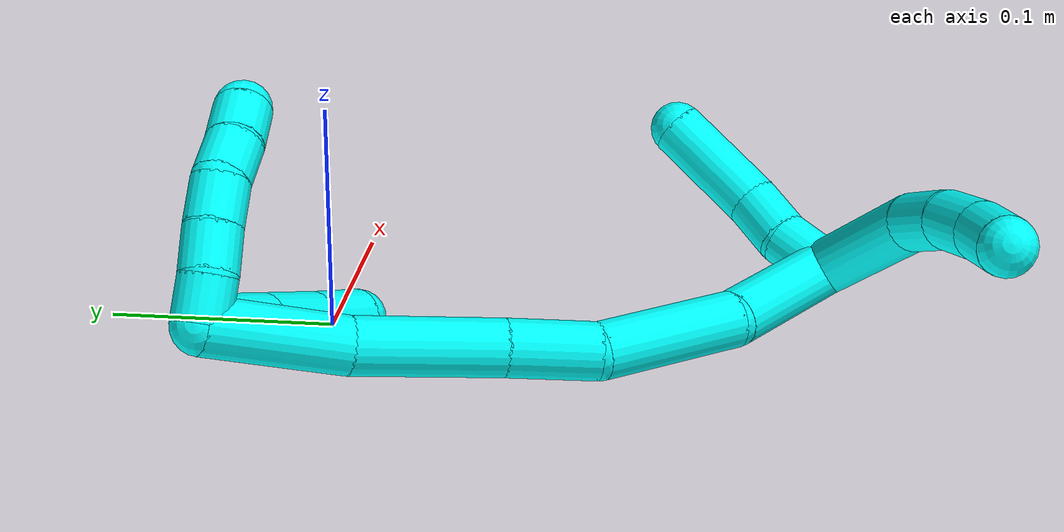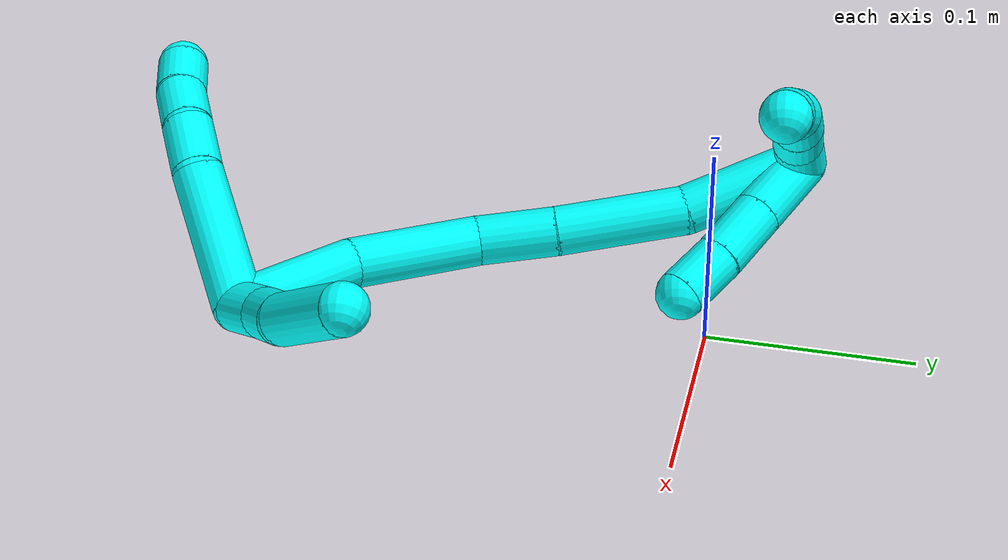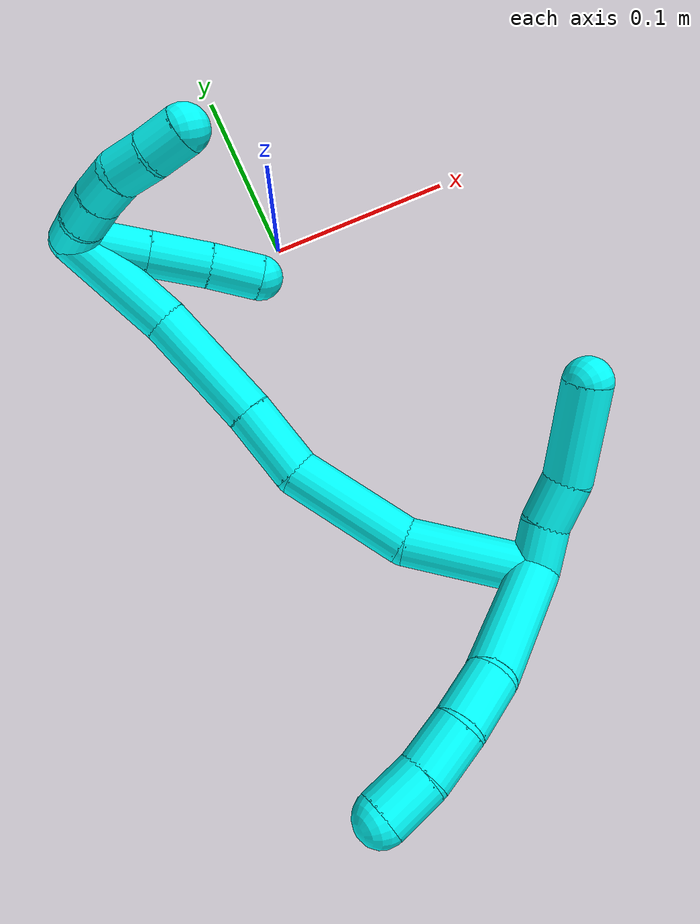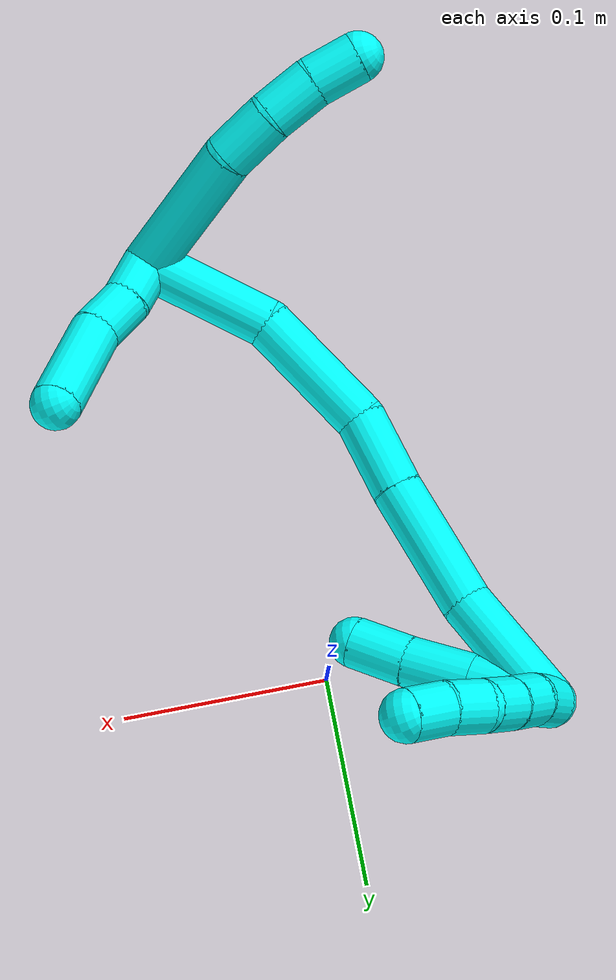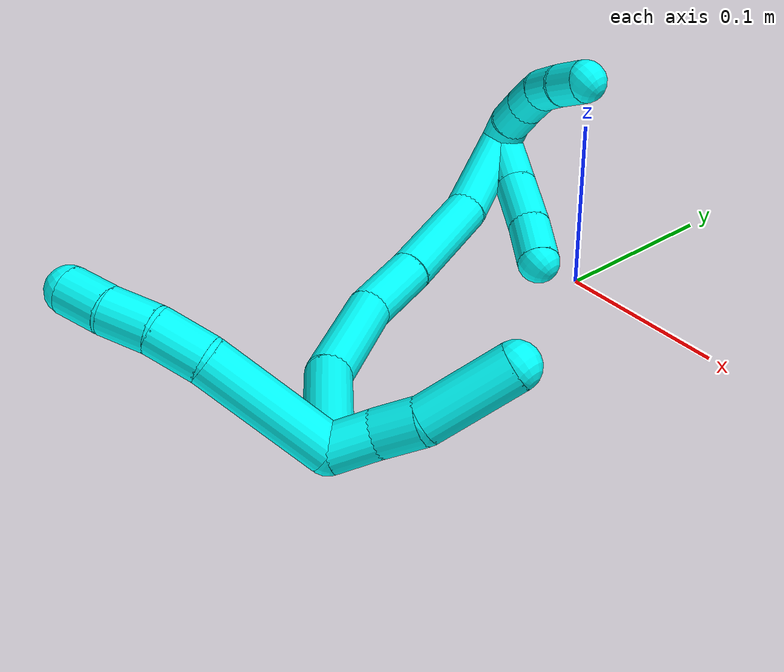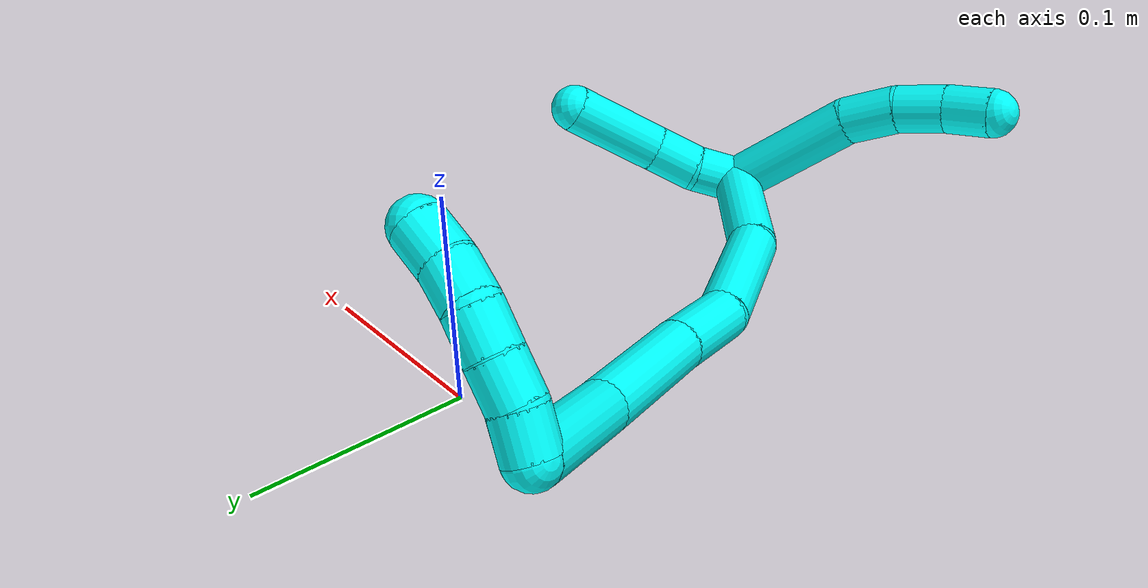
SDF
<sdf version="1.7">
 <world name="default">
  <model name="3">
   <static>0</static>
   <link name="3">
    <collision name="collision-cylinder-e_1_2_8">
     <pose>0.012544 -0.010998 0.031735 0.333614 0.357433 0.060812</pose>
     <geometry><cylinder><radius>0.0125</radius><length>0.071705</length></cylinder></geometry>
     <surface>
      <friction><ode><mu>1.16</mu><mu2>1.16</mu2><slip1>0</slip1><slip2>0</slip2></ode></friction>
      <contact><ode><kp>1e+06</kp><kd>1</kd><max_vel>0</max_vel><min_depth>0.001</min_depth></ode></contact>
     </surface>
    </collision>
    <visual name="visual-cylinder-e_1_2_8">
     <pose>0.012544 -0.010998 0.031735 0.333614 0.357433 0.060812</pose>
     <geometry><cylinder><radius>0.0125</radius><length>0.071705</length></cylinder></geometry>
     <material><ambient>0.003922 1 0.996078 1</ambient></material>
    </visual>
    <collision name="collision-cylinder-e_2_8_9">
     <pose>0.026504 -0.027062 0.076548 0.36952 0.100676 0.018831</pose>
     <geometry><cylinder><radius>0.0125</radius><length>0.028193</length></cylinder></geometry>
     <surface>
      <friction><ode><mu>1.16</mu><mu2>1.16</mu2><slip1>0</slip1><slip2>0</slip2></ode></friction>
      <contact><ode><kp>1e+06</kp><kd>1</kd><max_vel>0</max_vel><min_depth>0.001</min_depth></ode></contact>
     </surface>
    </collision>
    <visual name="visual-cylinder-e_2_8_9">
     <pose>0.026504 -0.027062 0.076548 0.36952 0.100676 0.018831</pose>
     <geometry><cylinder><radius>0.0125</radius><length>0.028193</length></cylinder></geometry>
     <material><ambient>0.003922 1 0.996078 1</ambient></material>
    </visual>
    <collision name="collision-cylinder-e_3_9_10">
     <pose>0.02657 -0.037645 0.101211 0.444504 -0.104894 -0.023725</pose>
     <geometry><cylinder><radius>0.0125</radius><length>0.025806</length></cylinder></geometry>
     <surface>
      <friction><ode><mu>1.16</mu><mu2>1.16</mu2><slip1>0</slip1><slip2>0</slip2></ode></friction>
      <contact><ode><kp>1e+06</kp><kd>1</kd><max_vel>0</max_vel><min_depth>0.001</min_depth></ode></contact>
     </surface>
    </collision>
    <visual name="visual-cylinder-e_3_9_10">
     <pose>0.02657 -0.037645 0.101211 0.444504 -0.104894 -0.023725</pose>
     <geometry><cylinder><radius>0.0125</radius><length>0.025806</length></cylinder></geometry>
     <material><ambient>0.003922 1 0.996078 1</ambient></material>
    </visual>
    <collision name="collision-cylinder-e_4_10_6">
     <pose>0.022619 -0.04688 0.124066 0.318555 -0.215662 -0.034775</pose>
     <geometry><cylinder><radius>0.0125</radius><length>0.024296</length></cylinder></geometry>
     <surface>
      <friction><ode><mu>1.16</mu><mu2>1.16</mu2><slip1>0</slip1><slip2>0</slip2></ode></friction>
      <contact><ode><kp>1e+06</kp><kd>1</kd><max_vel>0</max_vel><min_depth>0.001</min_depth></ode></contact>
     </surface>
    </collision>
    <visual name="visual-cylinder-e_4_10_6">
     <pose>0.022619 -0.04688 0.124066 0.318555 -0.215662 -0.034775</pose>
     <geometry><cylinder><radius>0.0125</radius><length>0.024296</length></cylinder></geometry>
     <material><ambient>0.003922 1 0.996078 1</ambient></material>
    </visual>
    <collision name="collision-cylinder-e_1_2_11">
     <pose>0.003444 0.010665 -0.005106 -2.01736 0.283429 -0.445477</pose>
     <geometry><cylinder><radius>0.0125</radius><length>0.024631</length></cylinder></geometry>
     <surface>
      <friction><ode><mu>1.16</mu><mu2>1.16</mu2><slip1>0</slip1><slip2>0</slip2></ode></friction>
      <contact><ode><kp>1e+06</kp><kd>1</kd><max_vel>0</max_vel><min_depth>0.001</min_depth></ode></contact>
     </surface>
    </collision>
    <visual name="visual-cylinder-e_1_2_11">
     <pose>0.003444 0.010665 -0.005106 -2.01736 0.283429 -0.445477</pose>
     <geometry><cylinder><radius>0.0125</radius><length>0.024631</length></cylinder></geometry>
     <material><ambient>0.003922 1 0.996078 1</ambient></material>
    </visual>
    <collision name="collision-cylinder-e_2_11_12">
     <pose>0.012773 0.030521 -0.016144 -2.14385 0.493579 -0.866207</pose>
     <geometry><cylinder><radius>0.0125</radius><length>0.024844</length></cylinder></geometry>
     <surface>
      <friction><ode><mu>1.16</mu><mu2>1.16</mu2><slip1>0</slip1><slip2>0</slip2></ode></friction>
      <contact><ode><kp>1e+06</kp><kd>1</kd><max_vel>0</max_vel><min_depth>0.001</min_depth></ode></contact>
     </surface>
    </collision>
    <visual name="visual-cylinder-e_2_11_12">
     <pose>0.012773 0.030521 -0.016144 -2.14385 0.493579 -0.866207</pose>
     <geometry><cylinder><radius>0.0125</radius><length>0.024844</length></cylinder></geometry>
     <material><ambient>0.003922 1 0.996078 1</ambient></material>
    </visual>
    <collision name="collision-cylinder-e_3_12_5">
     <pose>0.029043 0.062015 -0.02782 -1.8229 0.423603 -0.541251</pose>
     <geometry><cylinder><radius>0.0125</radius><length>0.050525</length></cylinder></geometry>
     <surface>
      <friction><ode><mu>1.16</mu><mu2>1.16</mu2><slip1>0</slip1><slip2>0</slip2></ode></friction>
      <contact><ode><kp>1e+06</kp><kd>1</kd><max_vel>0</max_vel><min_depth>0.001</min_depth></ode></contact>
     </surface>
    </collision>
    <visual name="visual-cylinder-e_3_12_5">
     <pose>0.029043 0.062015 -0.02782 -1.8229 0.423603 -0.541251</pose>
     <geometry><cylinder><radius>0.0125</radius><length>0.050525</length></cylinder></geometry>
     <material><ambient>0.003922 1 0.996078 1</ambient></material>
    </visual>
    <collision name="collision-cylinder-e_1_2_13">
     <pose>-0.019528 0.016131 0.021058 -0.653678 -0.634597 0.221736</pose>
     <geometry><cylinder><radius>0.0125</radius><length>0.065879</length></cylinder></geometry>
     <surface>
      <friction><ode><mu>1.16</mu><mu2>1.16</mu2><slip1>0</slip1><slip2>0</slip2></ode></friction>
      <contact><ode><kp>1e+06</kp><kd>1</kd><max_vel>0</max_vel><min_depth>0.001</min_depth></ode></contact>
     </surface>
    </collision>
    <visual name="visual-cylinder-e_1_2_13">
     <pose>-0.019528 0.016131 0.021058 -0.653678 -0.634597 0.221736</pose>
     <geometry><cylinder><radius>0.0125</radius><length>0.065879</length></cylinder></geometry>
     <material><ambient>0.003922 1 0.996078 1</ambient></material>
    </visual>
    <collision name="collision-cylinder-e_2_13_14">
     <pose>-0.056434 0.056635 0.055655 -1.06375 -0.557351 0.3336</pose>
     <geometry><cylinder><radius>0.0125</radius><length>0.065707</length></cylinder></geometry>
     <surface>
      <friction><ode><mu>1.16</mu><mu2>1.16</mu2><slip1>0</slip1><slip2>0</slip2></ode></friction>
      <contact><ode><kp>1e+06</kp><kd>1</kd><max_vel>0</max_vel><min_depth>0.001</min_depth></ode></contact>
     </surface>
    </collision>
    <visual name="visual-cylinder-e_2_13_14">
     <pose>-0.056434 0.056635 0.055655 -1.06375 -0.557351 0.3336</pose>
     <geometry><cylinder><radius>0.0125</radius><length>0.065707</length></cylinder></geometry>
     <material><ambient>0.003922 1 0.996078 1</ambient></material>
    </visual>
    <collision name="collision-cylinder-e_3_14_15">
     <pose>-0.080351 0.099413 0.07336 -1.34821 -0.333626 0.267448</pose>
     <geometry><cylinder><radius>0.0125</radius><length>0.039942</length></cylinder></geometry>
     <surface>
      <friction><ode><mu>1.16</mu><mu2>1.16</mu2><slip1>0</slip1><slip2>0</slip2></ode></friction>
      <contact><ode><kp>1e+06</kp><kd>1</kd><max_vel>0</max_vel><min_depth>0.001</min_depth></ode></contact>
     </surface>
    </collision>
    <visual name="visual-cylinder-e_3_14_15">
     <pose>-0.080351 0.099413 0.07336 -1.34821 -0.333626 0.267448</pose>
     <geometry><cylinder><radius>0.0125</radius><length>0.039942</length></cylinder></geometry>
     <material><ambient>0.003922 1 0.996078 1</ambient></material>
    </visual>
    <collision name="collision-cylinder-e_4_15_16">
     <pose>-0.098182 0.147205 0.086371 -1.27843 -0.352537 0.263267</pose>
     <geometry><cylinder><radius>0.0125</radius><length>0.065403</length></cylinder></geometry>
     <surface>
      <friction><ode><mu>1.16</mu><mu2>1.16</mu2><slip1>0</slip1><slip2>0</slip2></ode></friction>
      <contact><ode><kp>1e+06</kp><kd>1</kd><max_vel>0</max_vel><min_depth>0.001</min_depth></ode></contact>
     </surface>
    </collision>
    <visual name="visual-cylinder-e_4_15_16">
     <pose>-0.098182 0.147205 0.086371 -1.27843 -0.352537 0.263267</pose>
     <geometry><cylinder><radius>0.0125</radius><length>0.065403</length></cylinder></geometry>
     <material><ambient>0.003922 1 0.996078 1</ambient></material>
    </visual>
    <collision name="collision-cylinder-e_5_16_1">
     <pose>-0.116283 0.203976 0.109296 -1.09587 -0.217657 0.133159</pose>
     <geometry><cylinder><radius>0.0125</radius><length>0.063069</length></cylinder></geometry>
     <surface>
      <friction><ode><mu>1.16</mu><mu2>1.16</mu2><slip1>0</slip1><slip2>0</slip2></ode></friction>
      <contact><ode><kp>1e+06</kp><kd>1</kd><max_vel>0</max_vel><min_depth>0.001</min_depth></ode></contact>
     </surface>
    </collision>
    <visual name="visual-cylinder-e_5_16_1">
     <pose>-0.116283 0.203976 0.109296 -1.09587 -0.217657 0.133159</pose>
     <geometry><cylinder><radius>0.0125</radius><length>0.063069</length></cylinder></geometry>
     <material><ambient>0.003922 1 0.996078 1</ambient></material>
    </visual>
    <collision name="collision-cylinder-e_1_1_17">
     <pose>-0.113377 0.233674 0.122889 -1.7782 1.332 -1.5386</pose>
     <geometry><cylinder><radius>0.0125</radius><length>0.02</length></cylinder></geometry>
     <surface>
      <friction><ode><mu>1.16</mu><mu2>1.16</mu2><slip1>0</slip1><slip2>0</slip2></ode></friction>
      <contact><ode><kp>1e+06</kp><kd>1</kd><max_vel>0</max_vel><min_depth>0.001</min_depth></ode></contact>
     </surface>
    </collision>
    <visual name="visual-cylinder-e_1_1_17">
     <pose>-0.113377 0.233674 0.122889 -1.7782 1.332 -1.5386</pose>
     <geometry><cylinder><radius>0.0125</radius><length>0.02</length></cylinder></geometry>
     <material><ambient>0.003922 1 0.996078 1</ambient></material>
    </visual>
    <collision name="collision-cylinder-e_2_17_18">
     <pose>-0.094412 0.239114 0.120234 -2.17726 1.18059 -1.81528</pose>
     <geometry><cylinder><radius>0.0125</radius><length>0.02</length></cylinder></geometry>
     <surface>
      <friction><ode><mu>1.16</mu><mu2>1.16</mu2><slip1>0</slip1><slip2>0</slip2></ode></friction>
      <contact><ode><kp>1e+06</kp><kd>1</kd><max_vel>0</max_vel><min_depth>0.001</min_depth></ode></contact>
     </surface>
    </collision>
    <visual name="visual-cylinder-e_2_17_18">
     <pose>-0.094412 0.239114 0.120234 -2.17726 1.18059 -1.81528</pose>
     <geometry><cylinder><radius>0.0125</radius><length>0.02</length></cylinder></geometry>
     <material><ambient>0.003922 1 0.996078 1</ambient></material>
    </visual>
    <collision name="collision-cylinder-e_3_18_19">
     <pose>-0.075908 0.244815 0.11529 -2.39353 1.1825 -2.0835</pose>
     <geometry><cylinder><radius>0.0125</radius><length>0.02</length></cylinder></geometry>
     <surface>
      <friction><ode><mu>1.16</mu><mu2>1.16</mu2><slip1>0</slip1><slip2>0</slip2></ode></friction>
      <contact><ode><kp>1e+06</kp><kd>1</kd><max_vel>0</max_vel><min_depth>0.001</min_depth></ode></contact>
     </surface>
    </collision>
    <visual name="visual-cylinder-e_3_18_19">
     <pose>-0.075908 0.244815 0.11529 -2.39353 1.1825 -2.0835</pose>
     <geometry><cylinder><radius>0.0125</radius><length>0.02</length></cylinder></geometry>
     <material><ambient>0.003922 1 0.996078 1</ambient></material>
    </visual>
    <collision name="collision-cylinder-e_4_19_20">
     <pose>-0.058418 0.248706 0.106997 -2.90755 0.96759 -2.70139</pose>
     <geometry><cylinder><radius>0.0125</radius><length>0.02</length></cylinder></geometry>
     <surface>
      <friction><ode><mu>1.16</mu><mu2>1.16</mu2><slip1>0</slip1><slip2>0</slip2></ode></friction>
      <contact><ode><kp>1e+06</kp><kd>1</kd><max_vel>0</max_vel><min_depth>0.001</min_depth></ode></contact>
     </surface>
    </collision>
    <visual name="visual-cylinder-e_4_19_20">
     <pose>-0.058418 0.248706 0.106997 -2.90755 0.96759 -2.70139</pose>
     <geometry><cylinder><radius>0.0125</radius><length>0.02</length></cylinder></geometry>
     <material><ambient>0.003922 1 0.996078 1</ambient></material>
    </visual>
    <collision name="collision-cylinder-e_5_20_4">
     <pose>-0.042687 0.252249 0.095246 -2.79834 0.847425 -2.4078</pose>
     <geometry><cylinder><radius>0.0125</radius><length>0.02</length></cylinder></geometry>
     <surface>
      <friction><ode><mu>1.16</mu><mu2>1.16</mu2><slip1>0</slip1><slip2>0</slip2></ode></friction>
      <contact><ode><kp>1e+06</kp><kd>1</kd><max_vel>0</max_vel><min_depth>0.001</min_depth></ode></contact>
     </surface>
    </collision>
    <visual name="visual-cylinder-e_5_20_4">
     <pose>-0.042687 0.252249 0.095246 -2.79834 0.847425 -2.4078</pose>
     <geometry><cylinder><radius>0.0125</radius><length>0.02</length></cylinder></geometry>
     <material><ambient>0.003922 1 0.996078 1</ambient></material>
    </visual>
    <collision name="collision-cylinder-e_1_1_21">
     <pose>-0.118433 0.222398 0.1069 2.64341 0.243553 0.896849</pose>
     <geometry><cylinder><radius>0.0125</radius><length>0.038651</length></cylinder></geometry>
     <surface>
      <friction><ode><mu>1.16</mu><mu2>1.16</mu2><slip1>0</slip1><slip2>0</slip2></ode></friction>
      <contact><ode><kp>1e+06</kp><kd>1</kd><max_vel>0</max_vel><min_depth>0.001</min_depth></ode></contact>
     </surface>
    </collision>
    <visual name="visual-cylinder-e_1_1_21">
     <pose>-0.118433 0.222398 0.1069 2.64341 0.243553 0.896849</pose>
     <geometry><cylinder><radius>0.0125</radius><length>0.038651</length></cylinder></geometry>
     <material><ambient>0.003922 1 0.996078 1</ambient></material>
    </visual>
    <collision name="collision-cylinder-e_2_21_22">
     <pose>-0.109786 0.205795 0.076361 2.64393 0.244094 0.899454</pose>
     <geometry><cylinder><radius>0.0125</radius><length>0.032989</length></cylinder></geometry>
     <surface>
      <friction><ode><mu>1.16</mu><mu2>1.16</mu2><slip1>0</slip1><slip2>0</slip2></ode></friction>
      <contact><ode><kp>1e+06</kp><kd>1</kd><max_vel>0</max_vel><min_depth>0.001</min_depth></ode></contact>
     </surface>
    </collision>
    <visual name="visual-cylinder-e_2_21_22">
     <pose>-0.109786 0.205795 0.076361 2.64393 0.244094 0.899454</pose>
     <geometry><cylinder><radius>0.0125</radius><length>0.032989</length></cylinder></geometry>
     <material><ambient>0.003922 1 0.996078 1</ambient></material>
    </visual>
    <collision name="collision-cylinder-e_3_22_3">
     <pose>-0.101807 0.190892 0.05079 2.57857 0.285425 0.922272</pose>
     <geometry><cylinder><radius>0.0125</radius><length>0.02836</length></cylinder></geometry>
     <surface>
      <friction><ode><mu>1.16</mu><mu2>1.16</mu2><slip1>0</slip1><slip2>0</slip2></ode></friction>
      <contact><ode><kp>1e+06</kp><kd>1</kd><max_vel>0</max_vel><min_depth>0.001</min_depth></ode></contact>
     </surface>
    </collision>
    <visual name="visual-cylinder-e_3_22_3">
     <pose>-0.101807 0.190892 0.05079 2.57857 0.285425 0.922272</pose>
     <geometry><cylinder><radius>0.0125</radius><length>0.02836</length></cylinder></geometry>
     <material><ambient>0.003922 1 0.996078 1</ambient></material>
    </visual>
    <collision name="collision-sphere-3">
     <pose>-0.097814 0.18363 0.039284 0 -0 0</pose>
     <geometry><sphere><radius>0.0125</radius></sphere></geometry>
     <surface>
      <friction><ode><mu>1.16</mu><mu2>1.16</mu2><slip1>0</slip1><slip2>0</slip2></ode></friction>
      <contact><ode><kp>1e+06</kp><kd>1</kd><max_vel>0</max_vel><min_depth>0.001</min_depth></ode></contact>
     </surface>
    </collision>
    <visual name="visual-sphere-3">
     <pose>-0.097814 0.18363 0.039284 0 -0 0</pose>
     <geometry><sphere><radius>0.0125</radius></sphere></geometry>
     <material><ambient>0.003922 1 0.996078 1</ambient></material>
    </visual>
    <collision name="collision-sphere-22">
     <pose>-0.1058 0.198155 0.062296 0 -0 0</pose>
     <geometry><sphere><radius>0.0125</radius></sphere></geometry>
     <surface>
      <friction><ode><mu>1.16</mu><mu2>1.16</mu2><slip1>0</slip1><slip2>0</slip2></ode></friction>
      <contact><ode><kp>1e+06</kp><kd>1</kd><max_vel>0</max_vel><min_depth>0.001</min_depth></ode></contact>
     </surface>
    </collision>
    <visual name="visual-sphere-22">
     <pose>-0.1058 0.198155 0.062296 0 -0 0</pose>
     <geometry><sphere><radius>0.0125</radius></sphere></geometry>
     <material><ambient>0.003922 1 0.996078 1</ambient></material>
    </visual>
    <collision name="collision-sphere-21">
     <pose>-0.113772 0.213436 0.090425 0 -0 0</pose>
     <geometry><sphere><radius>0.0125</radius></sphere></geometry>
     <surface>
      <friction><ode><mu>1.16</mu><mu2>1.16</mu2><slip1>0</slip1><slip2>0</slip2></ode></friction>
      <contact><ode><kp>1e+06</kp><kd>1</kd><max_vel>0</max_vel><min_depth>0.001</min_depth></ode></contact>
     </surface>
    </collision>
    <visual name="visual-sphere-21">
     <pose>-0.113772 0.213436 0.090425 0 -0 0</pose>
     <geometry><sphere><radius>0.0125</radius></sphere></geometry>
     <material><ambient>0.003922 1 0.996078 1</ambient></material>
    </visual>
    <collision name="collision-sphere-4">
     <pose>-0.035191 0.254477 0.089013 0 -0 0</pose>
     <geometry><sphere><radius>0.0125</radius></sphere></geometry>
     <surface>
      <friction><ode><mu>1.16</mu><mu2>1.16</mu2><slip1>0</slip1><slip2>0</slip2></ode></friction>
      <contact><ode><kp>1e+06</kp><kd>1</kd><max_vel>0</max_vel><min_depth>0.001</min_depth></ode></contact>
     </surface>
    </collision>
    <visual name="visual-sphere-4">
     <pose>-0.035191 0.254477 0.089013 0 -0 0</pose>
     <geometry><sphere><radius>0.0125</radius></sphere></geometry>
     <material><ambient>0.003922 1 0.996078 1</ambient></material>
    </visual>
    <collision name="collision-sphere-20">
     <pose>-0.050182 0.250022 0.101479 0 -0 0</pose>
     <geometry><sphere><radius>0.0125</radius></sphere></geometry>
     <surface>
      <friction><ode><mu>1.16</mu><mu2>1.16</mu2><slip1>0</slip1><slip2>0</slip2></ode></friction>
      <contact><ode><kp>1e+06</kp><kd>1</kd><max_vel>0</max_vel><min_depth>0.001</min_depth></ode></contact>
     </surface>
    </collision>
    <visual name="visual-sphere-20">
     <pose>-0.050182 0.250022 0.101479 0 -0 0</pose>
     <geometry><sphere><radius>0.0125</radius></sphere></geometry>
     <material><ambient>0.003922 1 0.996078 1</ambient></material>
    </visual>
    <collision name="collision-sphere-11">
     <pose>0.006888 0.021329 -0.010213 0 -0 0</pose>
     <geometry><sphere><radius>0.0125</radius></sphere></geometry>
     <surface>
      <friction><ode><mu>1.16</mu><mu2>1.16</mu2><slip1>0</slip1><slip2>0</slip2></ode></friction>
      <contact><ode><kp>1e+06</kp><kd>1</kd><max_vel>0</max_vel><min_depth>0.001</min_depth></ode></contact>
     </surface>
    </collision>
    <visual name="visual-sphere-11">
     <pose>0.006888 0.021329 -0.010213 0 -0 0</pose>
     <geometry><sphere><radius>0.0125</radius></sphere></geometry>
     <material><ambient>0.003922 1 0.996078 1</ambient></material>
    </visual>
    <collision name="collision-sphere-6">
     <pose>0.02002 -0.050596 0.135336 0 -0 0</pose>
     <geometry><sphere><radius>0.0125</radius></sphere></geometry>
     <surface>
      <friction><ode><mu>1.16</mu><mu2>1.16</mu2><slip1>0</slip1><slip2>0</slip2></ode></friction>
      <contact><ode><kp>1e+06</kp><kd>1</kd><max_vel>0</max_vel><min_depth>0.001</min_depth></ode></contact>
     </surface>
    </collision>
    <visual name="visual-sphere-6">
     <pose>0.02002 -0.050596 0.135336 0 -0 0</pose>
     <geometry><sphere><radius>0.0125</radius></sphere></geometry>
     <material><ambient>0.003922 1 0.996078 1</ambient></material>
    </visual>
    <collision name="collision-sphere-10">
     <pose>0.025219 -0.043163 0.112796 0 -0 0</pose>
     <geometry><sphere><radius>0.0125</radius></sphere></geometry>
     <surface>
      <friction><ode><mu>1.16</mu><mu2>1.16</mu2><slip1>0</slip1><slip2>0</slip2></ode></friction>
      <contact><ode><kp>1e+06</kp><kd>1</kd><max_vel>0</max_vel><min_depth>0.001</min_depth></ode></contact>
     </surface>
    </collision>
    <visual name="visual-sphere-10">
     <pose>0.025219 -0.043163 0.112796 0 -0 0</pose>
     <geometry><sphere><radius>0.0125</radius></sphere></geometry>
     <material><ambient>0.003922 1 0.996078 1</ambient></material>
    </visual>
    <collision name="collision-sphere-9">
     <pose>0.027921 -0.032127 0.089626 0 -0 0</pose>
     <geometry><sphere><radius>0.0125</radius></sphere></geometry>
     <surface>
      <friction><ode><mu>1.16</mu><mu2>1.16</mu2><slip1>0</slip1><slip2>0</slip2></ode></friction>
      <contact><ode><kp>1e+06</kp><kd>1</kd><max_vel>0</max_vel><min_depth>0.001</min_depth></ode></contact>
     </surface>
    </collision>
    <visual name="visual-sphere-9">
     <pose>0.027921 -0.032127 0.089626 0 -0 0</pose>
     <geometry><sphere><radius>0.0125</radius></sphere></geometry>
     <material><ambient>0.003922 1 0.996078 1</ambient></material>
    </visual>
    <collision name="collision-sphere-2">
     <geometry><sphere><radius>0.0125</radius></sphere></geometry>
     <surface>
      <friction><ode><mu>1.16</mu><mu2>1.16</mu2><slip1>0</slip1><slip2>0</slip2></ode></friction>
      <contact><ode><kp>1e+06</kp><kd>1</kd><max_vel>0</max_vel><min_depth>0.001</min_depth></ode></contact>
     </surface>
    </collision>
    <visual name="visual-sphere-2">
     <geometry><sphere><radius>0.0125</radius></sphere></geometry>
     <material><ambient>0.003922 1 0.996078 1</ambient></material>
    </visual>
    <collision name="collision-sphere-19">
     <pose>-0.066653 0.24739 0.112515 0 -0 0</pose>
     <geometry><sphere><radius>0.0125</radius></sphere></geometry>
     <surface>
      <friction><ode><mu>1.16</mu><mu2>1.16</mu2><slip1>0</slip1><slip2>0</slip2></ode></friction>
      <contact><ode><kp>1e+06</kp><kd>1</kd><max_vel>0</max_vel><min_depth>0.001</min_depth></ode></contact>
     </surface>
    </collision>
    <visual name="visual-sphere-19">
     <pose>-0.066653 0.24739 0.112515 0 -0 0</pose>
     <geometry><sphere><radius>0.0125</radius></sphere></geometry>
     <material><ambient>0.003922 1 0.996078 1</ambient></material>
    </visual>
    <collision name="collision-sphere-8">
     <pose>0.025087 -0.021996 0.063469 0 -0 0</pose>
     <geometry><sphere><radius>0.0125</radius></sphere></geometry>
     <surface>
      <friction><ode><mu>1.16</mu><mu2>1.16</mu2><slip1>0</slip1><slip2>0</slip2></ode></friction>
      <contact><ode><kp>1e+06</kp><kd>1</kd><max_vel>0</max_vel><min_depth>0.001</min_depth></ode></contact>
     </surface>
    </collision>
    <visual name="visual-sphere-8">
     <pose>0.025087 -0.021996 0.063469 0 -0 0</pose>
     <geometry><sphere><radius>0.0125</radius></sphere></geometry>
     <material><ambient>0.003922 1 0.996078 1</ambient></material>
    </visual>
    <collision name="collision-sphere-12">
     <pose>0.018659 0.039713 -0.022076 0 -0 0</pose>
     <geometry><sphere><radius>0.0125</radius></sphere></geometry>
     <surface>
      <friction><ode><mu>1.16</mu><mu2>1.16</mu2><slip1>0</slip1><slip2>0</slip2></ode></friction>
      <contact><ode><kp>1e+06</kp><kd>1</kd><max_vel>0</max_vel><min_depth>0.001</min_depth></ode></contact>
     </surface>
    </collision>
    <visual name="visual-sphere-12">
     <pose>0.018659 0.039713 -0.022076 0 -0 0</pose>
     <geometry><sphere><radius>0.0125</radius></sphere></geometry>
     <material><ambient>0.003922 1 0.996078 1</ambient></material>
    </visual>
    <collision name="collision-sphere-5">
     <pose>0.039427 0.084316 -0.033564 0 -0 0</pose>
     <geometry><sphere><radius>0.0125</radius></sphere></geometry>
     <surface>
      <friction><ode><mu>1.16</mu><mu2>1.16</mu2><slip1>0</slip1><slip2>0</slip2></ode></friction>
      <contact><ode><kp>1e+06</kp><kd>1</kd><max_vel>0</max_vel><min_depth>0.001</min_depth></ode></contact>
     </surface>
    </collision>
    <visual name="visual-sphere-5">
     <pose>0.039427 0.084316 -0.033564 0 -0 0</pose>
     <geometry><sphere><radius>0.0125</radius></sphere></geometry>
     <material><ambient>0.003922 1 0.996078 1</ambient></material>
    </visual>
    <collision name="collision-sphere-13">
     <pose>-0.039056 0.032262 0.042116 0 -0 0</pose>
     <geometry><sphere><radius>0.0125</radius></sphere></geometry>
     <surface>
      <friction><ode><mu>1.16</mu><mu2>1.16</mu2><slip1>0</slip1><slip2>0</slip2></ode></friction>
      <contact><ode><kp>1e+06</kp><kd>1</kd><max_vel>0</max_vel><min_depth>0.001</min_depth></ode></contact>
     </surface>
    </collision>
    <visual name="visual-sphere-13">
     <pose>-0.039056 0.032262 0.042116 0 -0 0</pose>
     <geometry><sphere><radius>0.0125</radius></sphere></geometry>
     <material><ambient>0.003922 1 0.996078 1</ambient></material>
    </visual>
    <collision name="collision-sphere-14">
     <pose>-0.073811 0.081009 0.069194 0 -0 0</pose>
     <geometry><sphere><radius>0.0125</radius></sphere></geometry>
     <surface>
      <friction><ode><mu>1.16</mu><mu2>1.16</mu2><slip1>0</slip1><slip2>0</slip2></ode></friction>
      <contact><ode><kp>1e+06</kp><kd>1</kd><max_vel>0</max_vel><min_depth>0.001</min_depth></ode></contact>
     </surface>
    </collision>
    <visual name="visual-sphere-14">
     <pose>-0.073811 0.081009 0.069194 0 -0 0</pose>
     <geometry><sphere><radius>0.0125</radius></sphere></geometry>
     <material><ambient>0.003922 1 0.996078 1</ambient></material>
    </visual>
    <collision name="collision-sphere-15">
     <pose>-0.086891 0.117817 0.077526 0 -0 0</pose>
     <geometry><sphere><radius>0.0125</radius></sphere></geometry>
     <surface>
      <friction><ode><mu>1.16</mu><mu2>1.16</mu2><slip1>0</slip1><slip2>0</slip2></ode></friction>
      <contact><ode><kp>1e+06</kp><kd>1</kd><max_vel>0</max_vel><min_depth>0.001</min_depth></ode></contact>
     </surface>
    </collision>
    <visual name="visual-sphere-15">
     <pose>-0.086891 0.117817 0.077526 0 -0 0</pose>
     <geometry><sphere><radius>0.0125</radius></sphere></geometry>
     <material><ambient>0.003922 1 0.996078 1</ambient></material>
    </visual>
    <collision name="collision-sphere-16">
     <pose>-0.109474 0.176593 0.095216 0 -0 0</pose>
     <geometry><sphere><radius>0.0125</radius></sphere></geometry>
     <surface>
      <friction><ode><mu>1.16</mu><mu2>1.16</mu2><slip1>0</slip1><slip2>0</slip2></ode></friction>
      <contact><ode><kp>1e+06</kp><kd>1</kd><max_vel>0</max_vel><min_depth>0.001</min_depth></ode></contact>
     </surface>
    </collision>
    <visual name="visual-sphere-16">
     <pose>-0.109474 0.176593 0.095216 0 -0 0</pose>
     <geometry><sphere><radius>0.0125</radius></sphere></geometry>
     <material><ambient>0.003922 1 0.996078 1</ambient></material>
    </visual>
    <collision name="collision-sphere-1">
     <pose>-0.123093 0.231359 0.123376 0 -0 0</pose>
     <geometry><sphere><radius>0.0125</radius></sphere></geometry>
     <surface>
      <friction><ode><mu>1.16</mu><mu2>1.16</mu2><slip1>0</slip1><slip2>0</slip2></ode></friction>
      <contact><ode><kp>1e+06</kp><kd>1</kd><max_vel>0</max_vel><min_depth>0.001</min_depth></ode></contact>
     </surface>
    </collision>
    <visual name="visual-sphere-1">
     <pose>-0.123093 0.231359 0.123376 0 -0 0</pose>
     <geometry><sphere><radius>0.0125</radius></sphere></geometry>
     <material><ambient>0.003922 1 0.996078 1</ambient></material>
    </visual>
    <collision name="collision-sphere-18">
     <pose>-0.085164 0.24224 0.118066 0 -0 0</pose>
     <geometry><sphere><radius>0.0125</radius></sphere></geometry>
     <surface>
      <friction><ode><mu>1.16</mu><mu2>1.16</mu2><slip1>0</slip1><slip2>0</slip2></ode></friction>
      <contact><ode><kp>1e+06</kp><kd>1</kd><max_vel>0</max_vel><min_depth>0.001</min_depth></ode></contact>
     </surface>
    </collision>
    <visual name="visual-sphere-18">
     <pose>-0.085164 0.24224 0.118066 0 -0 0</pose>
     <geometry><sphere><radius>0.0125</radius></sphere></geometry>
     <material><ambient>0.003922 1 0.996078 1</ambient></material>
    </visual>
    <collision name="collision-sphere-17">
     <pose>-0.103661 0.235989 0.122402 0 -0 0</pose>
     <geometry><sphere><radius>0.0125</radius></sphere></geometry>
     <surface>
      <friction><ode><mu>1.16</mu><mu2>1.16</mu2><slip1>0</slip1><slip2>0</slip2></ode></friction>
      <contact><ode><kp>1e+06</kp><kd>1</kd><max_vel>0</max_vel><min_depth>0.001</min_depth></ode></contact>
     </surface>
    </collision>
    <visual name="visual-sphere-17">
     <pose>-0.103661 0.235989 0.122402 0 -0 0</pose>
     <geometry><sphere><radius>0.0125</radius></sphere></geometry>
     <material><ambient>0.003922 1 0.996078 1</ambient></material>
    </visual>
    <inertial>
     <pose>-0.047987 0.102545 0.063931 0 -0 0</pose>
     <mass>0.75</mass>
     <inertia>
      <ixx>0.000181</ixx>
      <ixy>0</ixy>
      <ixz>0</ixz>
      <iyy>0.000143</iyy>
      <iyz>0</iyz>
      <izz>-5.3e-05</izz>
     </inertia>
    </inertial>
   </link>
   <pose>0.047824 -0.216317 0.018136 0.636821 -1.00234 -0.633662</pose>
  </model>
 </world>
</sdf>
